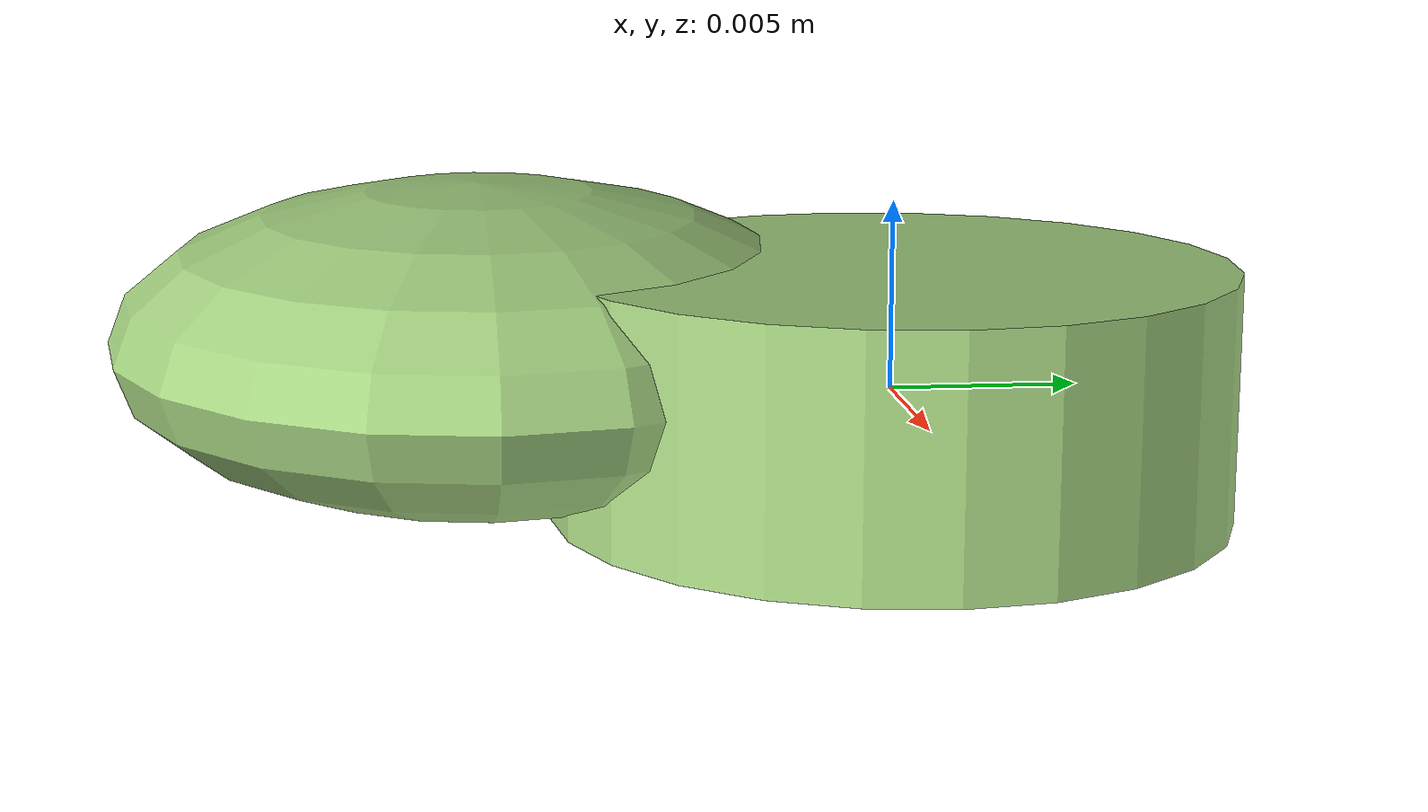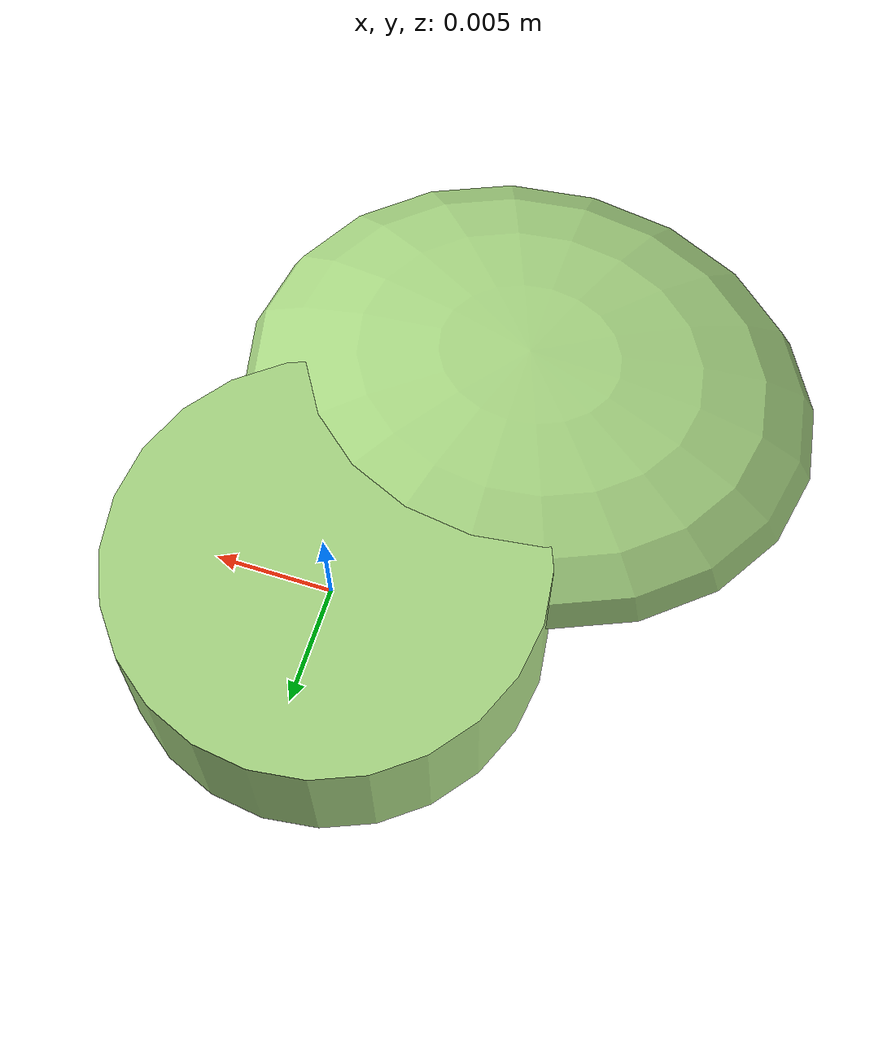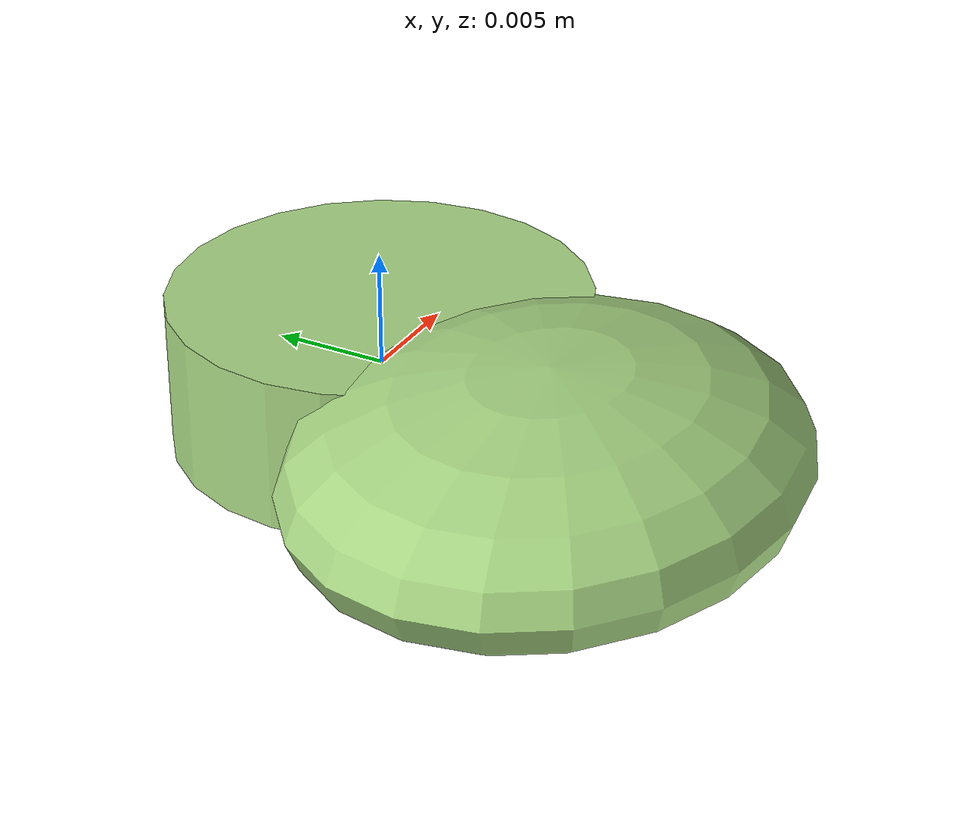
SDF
<?xml version="1.0" ?>
<!-- |    This document was autogenerated by xmacro from data/veggie_template/veggie_base.sdf.xacro  | -->
<!-- |    EDITING THIS FILE BY HAND IS NOT RECOMMENDED                                               | -->
<sdf version="1.8">
	<!-- Parameters -->
	<!-- Base -->
	<!-- Joint 0 -->
	<!-- Link 1 -->
	<!-- Joint 1 -->
	<!-- Link 2 -->
	<!-- Primitives -->
	<!-- All dimensions are half -->
	<!-- Object -->
	<model name="veggie">
		<!-- link0 -->
		<link name="link0">
			<inertial>
				<mass>0.0017274740170847359</mass>
				<inertia>
					<ixx>4.200927592701577e-08</ixx>
					<ixy>0</ixy>
					<ixz>0</ixz>
					<iyy>4.200927592701577e-08</iyy>
					<iyz>0</iyz>
					<izz>7.121172264773373e-08</izz>
				</inertia>
			</inertial>
			<visual name="link0_visual">
				<pose>0 0 0 0 0 0</pose>
				<geometry>
					<cylinder>
						<radius>0.009079981877894333</radius>
						<length>0.006669459998576717</length>
					</cylinder>
				</geometry>
				<material>
					<ambient>0.659 0.839 0.514 1</ambient>
					<diffuse>0.659 0.839 0.514 1</diffuse>
					<specular>0 0 0 0</specular>
					<emissive>0 0 0 1</emissive>
				</material>
			</visual>
			<collision name="link0_collision">
				<pose>0 0 0 0 0 0 </pose>
				<geometry>
					<cylinder>
						<radius>0.009079981877894333</radius>
						<length>0.006669459998576717</length>
					</cylinder>
				</geometry>
			</collision>
		</link>
		<!-- link1 -->
		<joint name="joint0" type="fixed">
			<pose relative_to="link0">-0.005194721957732346 -0.010660515319999194 0.0006355301264312531 0.0 0.0 0.0</pose>
			<parent>link0</parent>
			<child>link1</child>
		</joint>
		<link name="link1">
			<pose relative_to="joint0">0 0 0 0 0 0</pose>
			<inertial>
				<mass>0.002285314207737191</mass>
				<inertia>
					<ixx>5.6721031605690644e-08</ixx>
					<ixy>0</ixy>
					<ixz>0</ixz>
					<iyy>7.85096343732291e-08</iyy>
					<iyz>0</iyz>
					<izz>1.1846090266355357e-07</izz>
				</inertia>
			</inertial>
			<visual name="link1_visual">
				<pose>0 0 0 0 0 0</pose>
				<geometry>
					<ellipsoid>
						<radii>0.01238647452388237 0.010283668535148397 0.004283122651928704</radii>
					</ellipsoid>
				</geometry>
				<material>
					<ambient>0.659 0.839 0.514 1</ambient>
					<diffuse>0.659 0.839 0.514 1</diffuse>
					<specular>0 0 0 0</specular>
					<emissive>0 0 0 1</emissive>
				</material>
			</visual>
			<collision name="link1_collision">
				<pose>0 0 0 0 0 0 </pose>
				<geometry>
					<ellipsoid>
						<radii>0.01238647452388237 0.010283668535148397 0.004283122651928704</radii>
					</ellipsoid>
				</geometry>
			</collision>
		</link>
		<!-- link2 -->
	</model>
</sdf>
